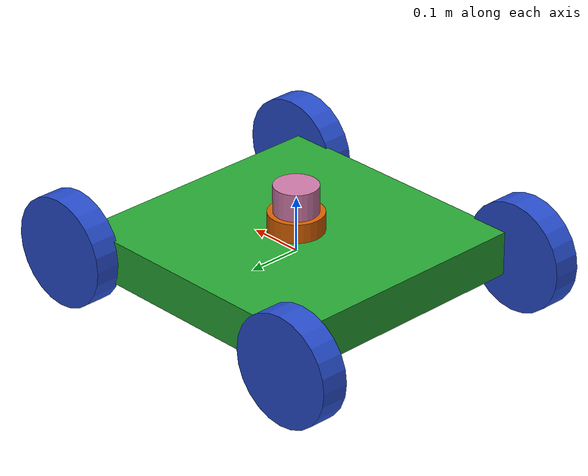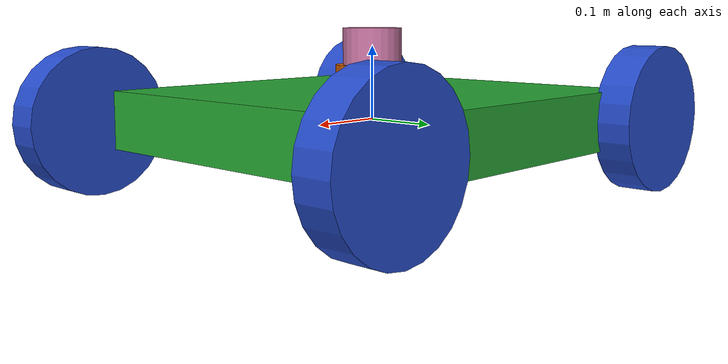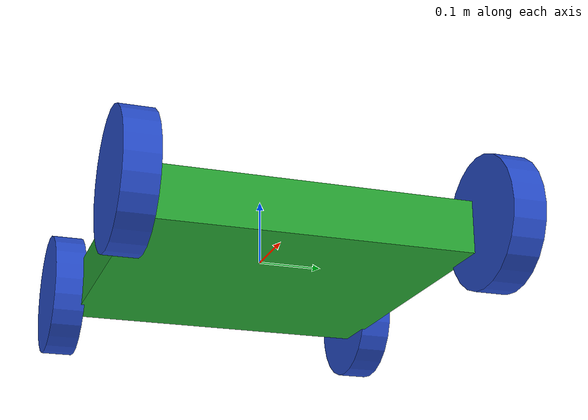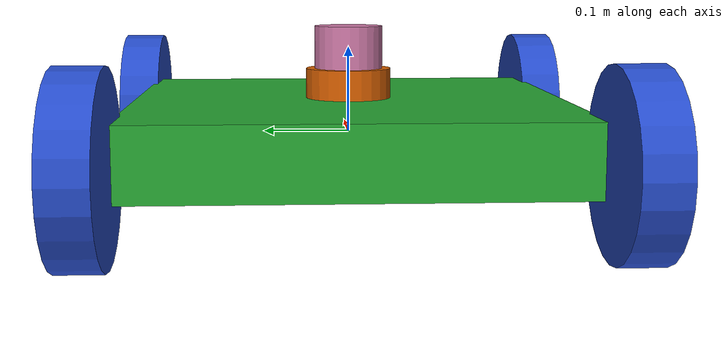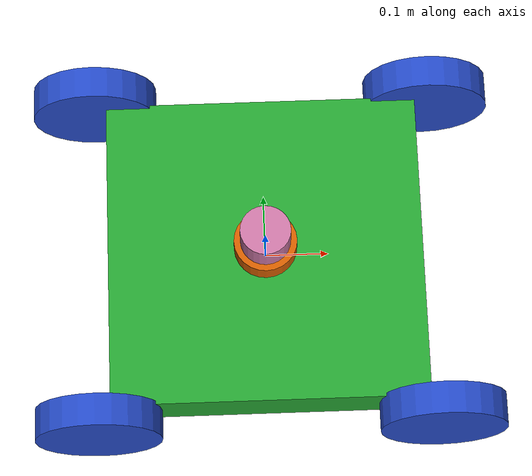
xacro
<?xml version="1.0" ?>

<robot name="skidsteer" xmlns:xacro="http://www.ros.org/wiki/xacro">

  <gazebo reference="link_chassis">
    <material>Gazebo/Green</material>
  </gazebo>
  <gazebo reference="link_front_right_wheel">
    <material>Gazebo/Blue</material>
  </gazebo>
  <gazebo reference="link_front_left_wheel">
    <material>Gazebo/Blue</material>
  </gazebo>
  <gazebo reference="link_back_right_wheel">
    <material>Gazebo/Blue</material>
  </gazebo>
  <gazebo reference="link_back_left_wheel">
    <material>Gazebo/Blue</material>
  </gazebo>

  <gazebo>
      <plugin name="skid_steer_drive_controller" filename="libgazebo_ros_skid_steer_drive.so">
      <updateRate>100.0</updateRate>
      <robotNamespace>/</robotNamespace>
      <leftFrontJoint>front_left_wheel_joint</leftFrontJoint>
      <rightFrontJoint>front_right_wheel_joint</rightFrontJoint>
      <leftRearJoint>back_left_wheel_joint</leftRearJoint>
      <rightRearJoint>back_right_wheel_joint</rightRearJoint>
      <wheelSeparation>0.3</wheelSeparation>
      <wheelDiameter>0.2</wheelDiameter>
      <robotBaseFrame>base_link</robotBaseFrame>
      <torque>20</torque>
      <topicName>cmd_vel</topicName>
      <broadcastTF>false</broadcastTF>
    </plugin>
  </gazebo>

  <link name="link_chassis">
    <!-- pose and inertial -->
    <pose>0 0 0.1 0 0 0</pose>
    <inertial>
      <mass value="5"/>
      <origin rpy="0 0 0" xyz="0 0 0.1"/>
      <inertia ixx="0.40833333333333" ixy="0" ixz="0" iyy="0.24166666666667"
        iyz="0" izz="0.24166666666667"/>
    </inertial>
    <!-- body -->
    <collision name="collision_chassis">
      <geometry>
        <box size="0.5 0.5 0.08"/>
      </geometry>
    </collision>
    <visual>
      <origin rpy="0 0 0" xyz="0 0 0"/>
      <geometry>
        <box size="0.5 0.5 0.08"/>
      </geometry>
      <material name="green"/>
    </visual>
  </link>

  <!-- defining wheels -->

  <link name="link_front_right_wheel">
    <inertial>
      <mass value="0.2"/>
      <origin rpy="0 1.5707 1.5707" xyz="0 0 0"/>
      <inertia ixx="0.0126666666666667" ixy="0" ixz="0" iyy="0.0126666666666667"
        iyz="0" izz="0.025"/>
    </inertial>
    <collision name="link_front_right_wheel_collision">
      <origin rpy="0 1.5707 1.5707" xyz="0 0 0"/>
    <geometry>
      <cylinder length="0.05" radius="0.1"/>
    </geometry>
    </collision>
    <visual name="link_front_right_wheel_visual">
      <origin rpy="0 1.5707 1.5707" xyz="0 0 0"/>
    <geometry>
      <cylinder length="0.05" radius="0.1"/>
    </geometry>
    </visual>
  </link>

  <link name="link_front_left_wheel">
    <inertial>
      <mass value="0.2"/>
      <origin rpy="0 1.5707 1.5707" xyz="0 0 0"/>
      <inertia ixx="0.0126666666666667" ixy="0" ixz="0" iyy="0.0126666666666667"
        iyz="0" izz="0.025"/>
    </inertial>
    <collision name="link_front_left_wheel_collision">
      <origin rpy="0 1.5707 1.5707" xyz="0 0 0"/>
    <geometry>
      <cylinder length="0.05" radius="0.1"/>
    </geometry>
    </collision>
    <visual name="link_front_left_wheel_visual">
      <origin rpy="0 1.5707 1.5707" xyz="0 0 0"/>
    <geometry>
      <cylinder length="0.05" radius="0.1"/>
    </geometry>
    </visual>
  </link>

  <link name="link_back_right_wheel">
    <inertial>
      <mass value="0.2"/>
      <origin rpy="0 1.5707 1.5707" xyz="0 0 0"/>
      <inertia ixx="0.0126666666666667" ixy="0" ixz="0" iyy="0.0126666666666667"
        iyz="0" izz="0.025"/>
    </inertial>
    <collision name="link_back_right_wheel_collision">
      <origin rpy="0 1.5707 1.5707" xyz="0 0 0"/>
    <geometry>
      <cylinder length="0.05" radius="0.1"/>
    </geometry>
    </collision>
    <visual name="link_back_right_wheel_visual">
      <origin rpy="0 1.5707 1.5707" xyz="0 0 0"/>
    <geometry>
      <cylinder length="0.05" radius="0.1"/>
    </geometry>
    </visual>
  </link>

  <link name="link_back_left_wheel">
    <inertial>
      <mass value="0.2"/>
      <origin rpy="0 1.5707 1.5707" xyz="0 0 0"/>
      <inertia ixx="0.0126666666666667" ixy="0" ixz="0" iyy="0.0126666666666667"
        iyz="0" izz="0.025"/>
    </inertial>
    <collision name="link_back_left_wheel_collision">
      <origin rpy="0 1.5707 1.5707" xyz="0 0 0"/>
    <geometry>
      <cylinder length="0.05" radius="0.1"/>
    </geometry>
    </collision>
    <visual name="link_back_left_wheel_visual">
      <origin rpy="0 1.5707 1.5707" xyz="0 0 0"/>
    <geometry>
      <cylinder length="0.05" radius="0.1"/>
    </geometry>
    </visual>
  </link>

  <!-- defining joints -->

  <joint name="front_right_wheel_joint" type="continuous">
    <origin rpy="0 0 0" xyz="0.27 0.27 0"/>
    <child link="link_front_right_wheel"/>
    <parent link="link_chassis"/>
    <axis rpy="0 0 0" xyz="0 1 0"/>
    <limit effort="100" velocity="1"/>
    <joint_properties damping="1.0" friction="1.0"/>
  </joint>

  <joint name="front_left_wheel_joint" type="continuous">
    <origin rpy="0 0 0" xyz="0.27 -0.27 0"/>
    <child link="link_front_left_wheel"/>
    <parent link="link_chassis"/>
    <axis rpy="0 0 0" xyz="0 1 0"/>
    <limit effort="100" velocity="1"/>
    <joint_properties damping="1.0" friction="1.0"/>
  </joint>

  <joint name="back_right_wheel_joint" type="continuous">
    <origin rpy="0 0 0" xyz="-0.27 0.27 0"/>
    <child link="link_back_right_wheel"/>
    <parent link="link_chassis"/>
    <axis rpy="0 0 0" xyz="0 1 0"/>
    <limit effort="100" velocity="1"/>
    <joint_properties damping="1.0" friction="1.0"/>
  </joint>

  <joint name="back_left_wheel_joint" type="continuous">
    <origin rpy="0 0 0" xyz="-0.27 -0.27 0"/>
    <child link="link_back_left_wheel"/>
    <parent link="link_chassis"/>
    <axis rpy="0 0 0" xyz="0 1 0"/>
    <limit effort="100" velocity="1"/>
    <joint_properties damping="1.0" friction="1.0"/>
  </joint>
  <xacro:include filename="$(find skidsteer)/model/lidar.xacro"/>
  <joint name="lidarGlue" type="fixed">
    <origin rpy="0 0 0" xyz="0 0 0.05"/>
    <parent link="link_chassis"/>
    <child link="laz_base"/>
  </joint>

</robot>

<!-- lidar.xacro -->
<robot xmlns:xacro="http://www.ros.org/wiki/xacro" name="lazDar">
  <xacro:property name="base_radius" value="0.05"/>
  <xacro:property name="base_height" value="0.05"/>
  <xacro:property name="laz_radius" value="0.04"/>
  <xacro:property name="laz_height" value="0.1"/>

  <link name="laz_base">
    <visual>
      <geometry>
        <cylinder length="${base_height}" radius="${base_radius}"/>
      </geometry>
    </visual>

    <collision>
      <geometry>
        <cylinder length="${base_height}" radius="${base_radius}"/>
      </geometry>
    </collision>

    <inertial>
      <mass value="0.1"/>
      <inertia ixx="${(1/12) * 0.1 * (3 * base_radius * base_radius + base_height * base_height)}" ixy="0" ixz="0" iyy="${(1/12) * 0.1 * (3 * base_radius * base_radius + base_height * base_height)}" iyz="0" izz="${(1/2) * 0.1 * base_radius * base_radius}"/>
    </inertial>
  </link>

  <link name="laz_rot">
    <visual>
      <geometry>
        <cylinder length="${laz_height}" radius="${laz_radius}"/>
      </geometry>
    </visual>

    <collision>
      <geometry>
        <cylinder length="${laz_height}" radius="${laz_radius}"/>
      </geometry>
    </collision>

    <inertial>
      <mass value="0.1"/>
      <inertia ixx="${(1/12) * 0.1 * (3 * laz_radius * laz_radius + laz_height * laz_height)}" ixy="0" ixz="0" iyy="${(1/12) * 0.1 * (3 * laz_radius * laz_radius + laz_height * laz_height)}" iyz="0" izz="${(1/2) * 0.1 * laz_radius * laz_radius}"/>
    </inertial>
  </link>

  <joint name="lazRot" type="continuous">
    <parent link="laz_base"/>
    <child link="laz_rot"/>
    <axis xyz="0 0 1"/>
    <origin xyz = "0 0 ${base_height/2}"/>
  </joint>
</robot>
